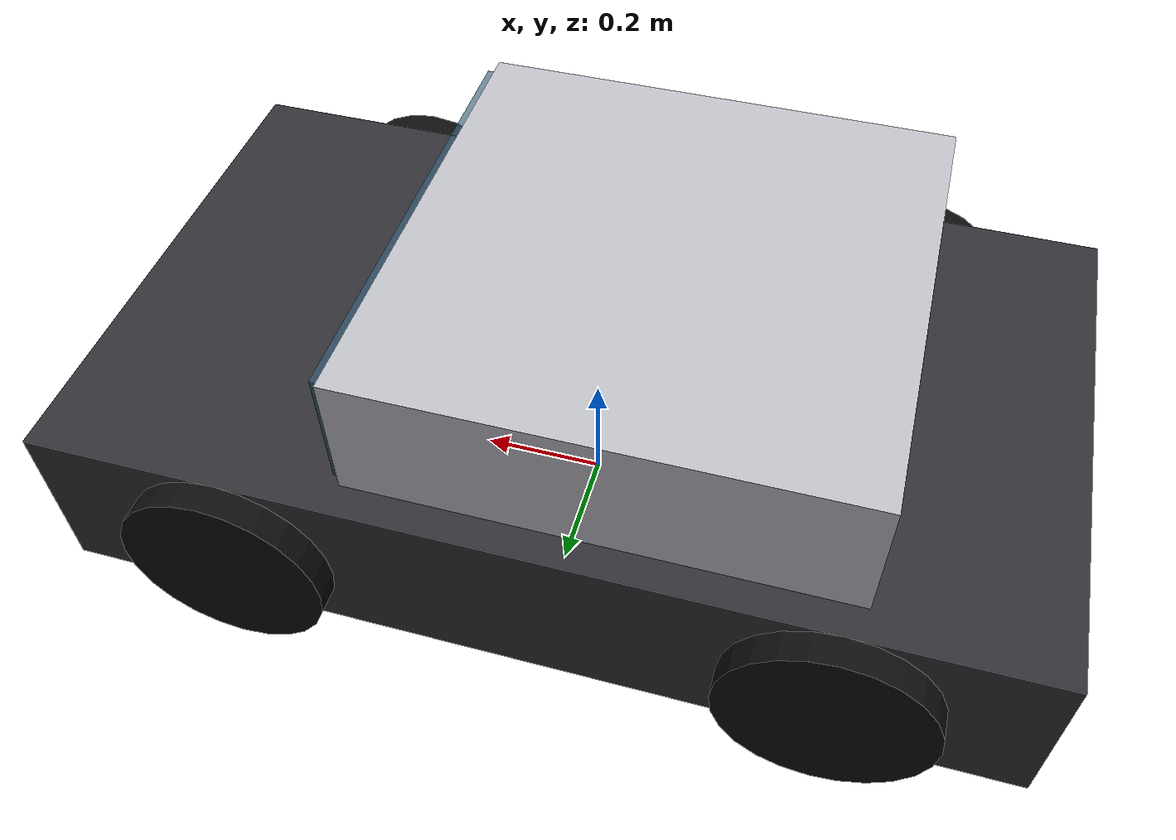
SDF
<?xml version="1.0"?>
<sdf version="1.6">
  <model name="car">
    <static>false</static>
    <link name="body">
      <pose>0 0 0.18 0 0 0</pose>
      <inertial>
        <mass>35.0</mass>
        <inertia>
          <ixx>2.0</ixx>
          <iyy>4.0</iyy>
          <izz>4.0</izz>
        </inertia>
      </inertial>
      <collision name="body_collision">
        <geometry>
          <box>
            <size>1.5 0.85 0.28</size>
          </box>
        </geometry>
      </collision>
      <visual name="body_visual">
        <geometry>
          <box>
            <size>1.5 0.85 0.28</size>
          </box>
        </geometry>
        <material>
          <ambient>0.18 0.18 0.20 1.0</ambient>
          <diffuse>0.18 0.18 0.20 1.0</diffuse>
        </material>
      </visual>
      <visual name="cabin_visual">
        <pose>-0.1 0 0.24 0 0 0</pose>
        <geometry>
          <box>
            <size>0.75 0.75 0.22</size>
          </box>
        </geometry>
        <material>
          <ambient>0.72 0.72 0.75 1.0</ambient>
          <diffuse>0.72 0.72 0.75 1.0</diffuse>
        </material>
      </visual>
      <visual name="windshield_visual">
        <pose>0.18 0 0.24 0 0 0</pose>
        <geometry>
          <box>
            <size>0.22 0.72 0.20</size>
          </box>
        </geometry>
        <material>
          <ambient>0.20 0.35 0.45 0.7</ambient>
          <diffuse>0.20 0.35 0.45 0.7</diffuse>
        </material>
      </visual>
      <visual name="wheel_front_left">
        <pose>0.45 0.42 -0.02 1.5708 0 0</pose>
        <geometry>
          <cylinder>
            <radius>0.16</radius>
            <length>0.10</length>
          </cylinder>
        </geometry>
        <material>
          <ambient>0.05 0.05 0.05 1.0</ambient>
          <diffuse>0.05 0.05 0.05 1.0</diffuse>
        </material>
      </visual>
      <visual name="wheel_front_right">
        <pose>0.45 -0.42 -0.02 1.5708 0 0</pose>
        <geometry>
          <cylinder>
            <radius>0.16</radius>
            <length>0.10</length>
          </cylinder>
        </geometry>
        <material>
          <ambient>0.05 0.05 0.05 1.0</ambient>
          <diffuse>0.05 0.05 0.05 1.0</diffuse>
        </material>
      </visual>
      <visual name="wheel_rear_left">
        <pose>-0.45 0.42 -0.02 1.5708 0 0</pose>
        <geometry>
          <cylinder>
            <radius>0.16</radius>
            <length>0.10</length>
          </cylinder>
        </geometry>
        <material>
          <ambient>0.05 0.05 0.05 1.0</ambient>
          <diffuse>0.05 0.05 0.05 1.0</diffuse>
        </material>
      </visual>
      <visual name="wheel_rear_right">
        <pose>-0.45 -0.42 -0.02 1.5708 0 0</pose>
        <geometry>
          <cylinder>
            <radius>0.16</radius>
            <length>0.10</length>
          </cylinder>
        </geometry>
        <material>
          <ambient>0.05 0.05 0.05 1.0</ambient>
          <diffuse>0.05 0.05 0.05 1.0</diffuse>
        </material>
      </visual>
    </link>
  </model>
</sdf>
